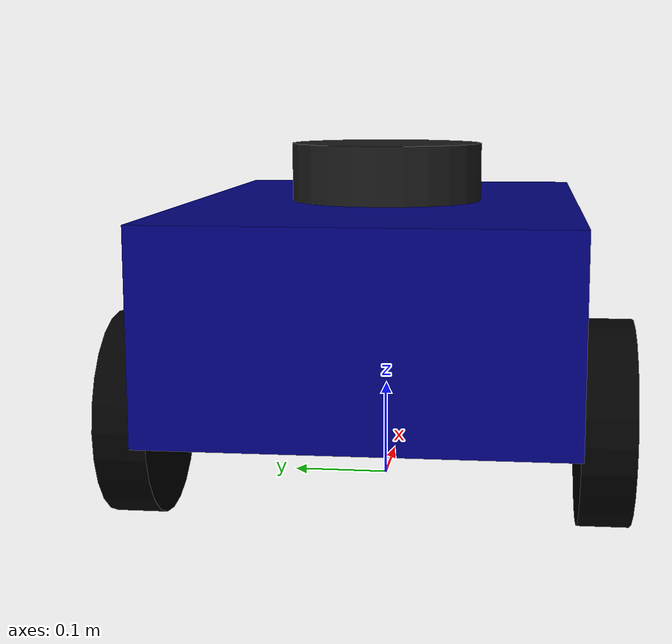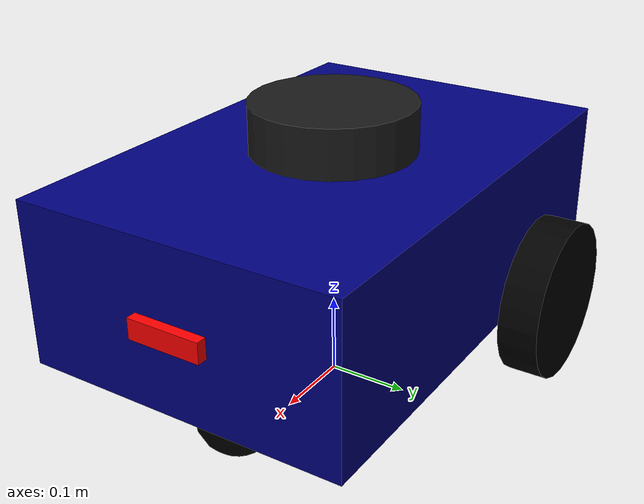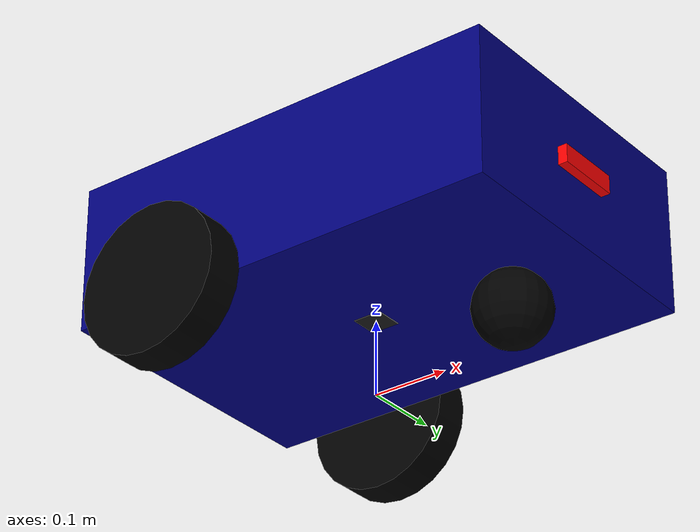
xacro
<?xml version="1.0"?>
<robot name="my_diff_robot" xmlns:xacro="http://www.ros.org/wiki/xacro">

    <xacro:include filename="$(find diff_robot_description)/urdf/robot/common_properties.xacro" />
    <xacro:include filename="$(find diff_robot_description)/urdf/robot/mobile_base.xacro" />
    <xacro:include filename="$(find diff_robot_description)/urdf/gazebo/gazebo.xacro" />
    <xacro:include filename="$(find diff_robot_description)/urdf/control/ros2_controllers.xacro" />

</robot>

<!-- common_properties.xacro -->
<robot xmlns:xacro="http://www.ros.org/wiki/xacro">

    <material name="blue">
        <color rgba="0 0 0.5 1" />
    </material>

    <material name="grey">
        <color rgba="0.5 0.5 0.5 1" />
    </material>

    <material name="black">
        <color rgba="0 0 0 1" />
    </material>

</robot>

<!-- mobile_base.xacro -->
<robot xmlns:xacro="http://www.ros.org/wiki/xacro">
  <xacro:include filename="$(find diff_robot_description)/urdf/inertia.xacro" />

    <xacro:property name="base_length" value="0.6" />
    <xacro:property name="base_width" value="0.4" />
    <xacro:property name="base_height" value="0.2" />
    <xacro:property name="wheel_radius" value="0.1" />
    <xacro:property name="wheel_length" value="0.05" />
    <xacro:arg name="enable_collision" default="false" />

    <xacro:macro name="default_inertia" params="mass">
        <inertial>
            <mass value="${mass}"/>
            <origin xyz="0.0 0.0 0.0" rpy="0.0 0.0 0.0"/>
            <inertia ixx="1" ixy="0.0" ixz="0.0" iyy="1" iyz="0.0" izz="1"/>
        </inertial>
    </xacro:macro>

    <!-- base_footprint (projection of base_link on the ground) -->
    <link name="base_footprint" />

    <joint name="base_joint" type="fixed">
        <parent link="base_footprint" />
        <child link="base_link" />
        <origin xyz="0 0 ${wheel_radius}" rpy="0 0 0"/>
    </joint>

    <!-- base_link and base_scan (required for Nav2) -->
    <link name="base_link">
        <visual>
            <geometry>
                <box size="${base_length} ${base_width} ${base_height}" />
            </geometry>
            <origin xyz="0 0 ${base_height / 2.0}" rpy="0 0 0" />
            <material name="blue" />
        </visual>

    <xacro:if value="$(arg enable_collision)">
        <collision>
          <geometry>
            <box size="${base_length} ${base_width} ${base_height}" />
          </geometry>
          <origin xyz="0 0 ${base_height / 2.0}" rpy="0 0 0" />
        </collision>
      </xacro:if>

      <xacro:inertial_box mass="5"  x="${base_length}" y="${base_width}" z="${base_height}">
        <origin xyz="0 0 ${base_height / 2.0}" rpy="0 0 0"/>
      </xacro:inertial_box>
    </link>

    <!-- 2 Differential wheels and one caster wheel to keep balance-->
    <xacro:macro name="wheel_link" params="prefix">
        <link name="${prefix}_wheel_link">
            <visual>
                <geometry>
                    <cylinder radius="${wheel_radius}" length="${wheel_length}"/>
                </geometry>
                <origin xyz="0 0 0" rpy="${pi / 2.0} 0 0" />
                <material name="black" />
            </visual>

            <xacro:if value="$(arg enable_collision)">
                <collision>
                  <geometry>
                    <cylinder radius="${wheel_radius}" length="${wheel_length}" />
                  </geometry>
                  <origin xyz="0 0 0" rpy="${pi / 2.0} 0 0" />
                </collision>
              </xacro:if>

              <xacro:inertial_cylinder mass="1" length="${wheel_length}" radius="${wheel_radius}">
                <origin xyz="0 0 0" rpy="${pi / 2.0} 0 0" />
              </xacro:inertial_cylinder>
          </link>
    </xacro:macro>

    <xacro:wheel_link prefix="right" />
    <xacro:wheel_link prefix="left" />

    <link name="caster_wheel_link">
        <visual>
            <geometry>
                <sphere radius="${wheel_radius / 2.0}" />
            </geometry>
            <origin xyz="0 0 0" rpy="0 0 0" />
            <material name="black" />
        </visual>

        <xacro:if value="$(arg enable_collision)">
            <collision>
              <geometry>
                <sphere radius="${wheel_radius / 2.0}" />
              </geometry>
              <origin xyz="0 0 0" rpy="0 0 0" />
            </collision>
        </xacro:if>

        <xacro:inertial_sphere mass="0.5" radius="${wheel_radius / 2.0}">
          <origin xyz="0 0 0" rpy="0 0 0" />
        </xacro:inertial_sphere>
    </link>

    <joint name="base_right_wheel_joint" type="continuous">
        <parent link="base_link" />
        <child link="right_wheel_link" />
        <origin xyz="${-base_length / 4.0} ${-(base_width + wheel_length) / 2.0} 0" rpy="0 0 0" />
        <axis xyz="0 1 0" />
        <dynamics damping="0.1" friction="0.0"/>
    </joint>

    <joint name="base_left_wheel_joint" type="continuous">
        <parent link="base_link" />
        <child link="left_wheel_link" />
        <origin xyz="${-base_length / 4.0} ${(base_width + wheel_length) / 2.0} 0" rpy="0 0 0" />
        <axis xyz="0 1 0" />
        <dynamics damping="0.1" friction="0.0"/>
    </joint>

    <joint name="base_caster_wheel_joint" type="fixed">
        <parent link="base_link" />
        <child link="caster_wheel_link" />
        <origin xyz="${base_length / 3.0} 0 ${-wheel_radius / 2.0}" rpy="0 0 0" />
        <axis xyz="0 0 1" />
    </joint>

</robot>

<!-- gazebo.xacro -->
<robot name="my_diff_robot" xmlns:xacro="http://www.ros.org/wiki/xacro">
    <xacro:arg name="prefix" default=""/>
    <xacro:property name="M_PI" value="3.1415926535897931" />
    <xacro:arg name="enable_collision" default="false"/>
    <xacro:arg name="enable_gz_control" default="false"/>

    <xacro:include filename="$(find diff_robot_description)/urdf/sensors/imu.urdf.xacro" />
    <xacro:include filename="$(find diff_robot_description)/urdf/sensors/lidar.urdf.xacro" />
    <xacro:include filename="$(find diff_robot_description)/urdf/sensors/rgbd_camera.urdf.xacro" />

    <!-- Wheel properties-->
    <gazebo reference="left_wheel_link">
      <mu1>1</mu1>
      <mu2>1</mu2>
    </gazebo>

    <gazebo reference="right_wheel_link">
      <mu1>1</mu1>
      <mu2>1</mu2>
    </gazebo>

    <gazebo reference="caster_wheel_link">
      <mu1>0.01</mu1>
      <mu2>0.01</mu2>
    </gazebo>

    <!-- Plugin Ros2 control Section for Gazebo-->
    <xacro:if value="$(arg enable_gz_control)">
      <gazebo>
        <plugin filename="gz_ros2_control-system" name="gz_ros2_control::GazeboSimROS2ControlPlugin">
            <parameters>$(find diff_robot_controllers)/config/robot_controllers.yaml</parameters>
        </plugin>
      </gazebo>
    </xacro:if>

    <!-- Sensors section -->
    <xacro:rgbd_camera
      prefix="$(arg prefix)"
      camera_name="cam_1"
      xyz_offset="0.3 0 0.1"
      rpy_offset="0 0 0"
      enable_collision="$(arg enable_collision)"/>

    <xacro:imu_sensor
      prefix="$(arg prefix)"
      parent="base_link"
      frame_id="imu"
      xyz_offset="0 0 0.006"
      rpy_offset="0 0 0"
      update_rate="15.0"
      topic_name="imu/data"
      enable_collision="$(arg enable_collision)"/>

    <xacro:lidar_sensor
      prefix="$(arg prefix)"
      parent="base_link"
      frame_id="base_scan"
      xyz_offset="0 0 0.23"
      rpy_offset="0 0 0"
      enable_collision="$(arg enable_collision)"
      topic_name="scan"/>

</robot>

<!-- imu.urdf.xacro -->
<robot xmlns:xacro="http://www.ros.org/wiki/xacro">
    <xacro:property name="M_PI" value="3.1415926535897931" />

    <xacro:macro name="imu_sensor" params="
        prefix:=''
        parent:='base_link'
        frame_id:='imu'
        xyz_offset:='0 0 0'
        rpy_offset:='0 0 0'
        inertial_xyz_offset:='0 0 0'
        inertial_rpy_offset:='0 0 0'
        mass:=0.031
        length:=0.03899
        width:=0.03785
        height:=0.01338
        material_name:='imu_black'
        material_color:='0.1 0.1 0.1 1'
        gazebo_material_ambient:='0.1 0.1 0.1 1'
        gazebo_material_diffuse:='0.1 0.1 0.1 1'
        gazebo_material_specular:='0.1 0.1 0.1 1'
        update_rate:='15.0'
        topic_name:='imu/data'
        always_on:=true
        visualize:=false
        enable_collision:=false">

        <xacro:property name="ixx" value="${(mass/12.0) * (height*height + width*width)}" />
        <xacro:property name="iyy" value="${(mass/12.0) * (length*length + height*height)}" />
        <xacro:property name="izz" value="${(mass/12.0) * (length*length + width*width)}" />

        <link name="${prefix}${frame_id}_link">
            <visual>
                <origin xyz="0 0 0" rpy="0 0 0"/>
                <geometry>
                    <box size="${length} ${width} ${height}"/>
                </geometry>
                <material name="${material_name}">
                    <color rgba="${material_color}"/>
                </material>
            </visual>

            <inertial>
                <mass value="${mass}" />
                <origin xyz="${inertial_xyz_offset}" rpy="${inertial_rpy_offset}"/>
                <inertia
                    ixx="${ixx}"
                    ixy="0.0"
                    ixz="0.0"
                    iyy="${iyy}"
                    iyz="0.0"
                    izz="${izz}" />
            </inertial>

            <xacro:if value="${enable_collision}">
                <collision>
                <geometry>
                    <box size="${length} ${width} ${height}"/>
                </geometry>
                <origin xyz="${inertial_xyz_offset}" rpy="${inertial_rpy_offset}"/>s
                </collision>
            </xacro:if>
        </link>

        <joint name="${prefix}${frame_id}_joint" type="fixed">
            <parent link="${prefix}${parent}"/>
            <child link="${prefix}${frame_id}_link" />
            <origin xyz="${xyz_offset}" rpy="${rpy_offset}"/>
        </joint>

        <!-- IMU Sensor -->
        <gazebo>
            <plugin filename="gz-sim-imu-system"
                    name="gz::sim::systems::Imu">
            </plugin>
        </gazebo>

        <gazebo reference="${prefix}${frame_id}_link">
            <material>
                <ambient>${gazebo_material_ambient}</ambient>
                <diffuse>${gazebo_material_diffuse}</diffuse>
                <specular>${gazebo_material_specular}</specular>
            </material>
            <sensor name="${prefix}imu_sensor" type="imu">
                <topic>${topic_name}</topic>
                <update_rate>${update_rate}</update_rate>
                <always_on>${always_on}</always_on>
                <visualize>${visualize}</visualize>
                <gz_frame_id>${prefix}${frame_id}_link</gz_frame_id>
                <imu>
                    <angular_velocity>true</angular_velocity>
                    <linear_acceleration>true</linear_acceleration>
                  </imu>
            </sensor>
        </gazebo>
    </xacro:macro>
</robot>

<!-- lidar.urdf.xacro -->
<robot xmlns:xacro="http://www.ros.org/wiki/xacro">
  <xacro:property name="M_PI" value="3.1415926535897931" />

  <xacro:macro name="lidar_sensor" params="
    prefix:=''
    parent:='base_link'
    frame_id:='base_scan'
    mesh_file:=''
    xyz_offset:='0 0 0.0825'
    rpy_offset:='0 0 0'
    mesh_xyz_offset:='0 0 0'
    mesh_rpy_offset:='${-M_PI/2} 0 0'
    mesh_scale:='0.001 0.001 0.001'
    collision_xyz_offset:='0 0 0'
    collision_rpy_offset:='0 0 0'
    inertial_xyz_offset:='0 0 0'
    inertial_rpy_offset:='0 0 0'
    lidar_width:=0.2
    lidar_height:=0.06
    mass:=0.185
    material_name:='rplidar_black'
    material_color:='0.1 0.1 0.1 1'
    gazebo_material_ambient:='0.1 0.1 0.1 1'
    gazebo_material_diffuse:='0.1 0.1 0.1 1'
    gazebo_material_specular:='0.1 0.1 0.1 1'
    update_rate:=10
    ray_count:=720
    min_angle:='-3.14159'
    max_angle:='3.14159'
    min_range:='0.20'
    max_range:='30.0'
    range_resolution:='0.013'
    topic_name:='scan'
    always_on:=true
    visualize:=true
    enable_collision:=false">

    <xacro:property name="radius" value="${lidar_width/2}" />
    <xacro:property name="ixx_iyy" value="1" />
    <xacro:property name="izz" value="1" />

    <link name="${prefix}${frame_id}">
      <visual>
        <geometry>
          <cylinder radius="${lidar_width/2}" length="${lidar_height}"/>
        </geometry>
        <material name="${material_name}">
          <color rgba="${material_color}"/>
        </material>
      </visual>

      <xacro:if value="${enable_collision}">
        <collision>
          <geometry>
            <cylinder radius="${lidar_width/2}" length="${lidar_height}"/>
          </geometry>
        </collision>
      </xacro:if>

      <inertial>
        <mass value="${mass}" />
        <origin xyz="${inertial_xyz_offset}" rpy="${inertial_rpy_offset}"/>
        <inertia
          ixx="${ixx_iyy}"
          ixy="0.0"
          ixz="0.0"
          iyy="${ixx_iyy}"
          iyz="0.0"
          izz="${izz}" />
      </inertial>
    </link>

    <joint name="${prefix}${frame_id}_joint" type="fixed">
      <parent link="${prefix}${parent}"/>
      <child link="${prefix}${frame_id}" />
      <origin xyz="${xyz_offset}" rpy="${rpy_offset}"/>
    </joint>

     <!-- Plugin Lidar Sensors Section for Gazebo-->
     <gazebo>
      <plugin
       filename="gz-sim-sensors-system"
       name="gz::sim::systems::Sensors">
       <render_engine>ogre2</render_engine>
      </plugin>
    </gazebo>

    <!-- Lidar sensor -->
    <gazebo reference="${prefix}${frame_id}">
      <material>
        <ambient>${gazebo_material_ambient}</ambient>
        <diffuse>${gazebo_material_diffuse}</diffuse>
        <specular>${gazebo_material_specular}</specular>
      </material>
      <sensor name="${prefix}lidar_sensor" type="gpu_lidar">
        <topic>${topic_name}</topic>
        <update_rate>${update_rate}</update_rate>
        <always_on>${always_on}</always_on>
        <visualize>${visualize}</visualize>
        <ray>
          <scan>
            <horizontal>
              <samples>${ray_count}</samples>
              <resolution>1</resolution>
              <min_angle>${min_angle}</min_angle>
              <max_angle>${max_angle}</max_angle>
            </horizontal>
            <vertical>
              <samples>1</samples>
              <resolution>1</resolution>
              <min_angle>0</min_angle>
              <max_angle>0</max_angle>
            </vertical>
          </scan>
          <range>
            <min>${min_range}</min>
            <max>${max_range}</max>
            <resolution>${range_resolution}</resolution>
          </range>
        </ray>
        <gz_frame_id>${prefix}${frame_id}</gz_frame_id>
      </sensor>
    </gazebo>
  </xacro:macro>
</robot>

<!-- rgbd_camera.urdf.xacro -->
<robot xmlns:xacro="http://www.ros.org/wiki/xacro">

  <xacro:property name="M_PI" value="3.1415926535897931" />

  <xacro:macro name="rgbd_camera" params="
    prefix:=''
    camera_name:='cam_1'
    parent:='base_link'
    xyz_offset:='0.105 0 0.05'
    rpy_offset:='0 -0.50 0'
    mesh_xyz_offset:='0 0 0'
    mesh_rpy_offset:='${M_PI/2} 0.0 ${M_PI/2}'
    collision_xyz_offset:='0 0 0'
    collision_rpy_offset:='0 0 0'
    inertial_xyz_offset:='0 0 0'
    inertial_rpy_offset:='0 0 0'
    optical_xyz_offset:='0 0 0'
    optical_rpy_offset:='${-M_PI/2} 0 ${-M_PI/2}'
    depth_frame_xyz_offset:='0 0 0'
    depth_frame_rpy_offset:='0 0 0'
    infra1_xyz_offset:='0 0 0'
    infra1_rpy_offset:='0 0 0'
    infra2_xyz_offset:='0 -0.05 0'
    infra2_rpy_offset:='0 0 0'
    color_xyz_offset:='0 0.015 0'
    color_rpy_offset:='0 0 0'
    cam_width:=0.090
    cam_height:=0.025
    cam_depth:=0.02505
    mass:=0.072
    ixx:=0.003881243
    ixy:=0.0
    ixz:=0.0
    iyy:=0.000498940
    iyz:=0.0
    izz:=0.003879257
    material_name:='aluminum'
    material_color:='1 0 0 1'
    horizontal_fov:=1.5184
    image_width:=424
    image_height:=240
    clip_near:=0.05
    clip_far:=1.5
    update_rate:=2
    always_on:=1
    visualize:=true
    enable_collision:=false">

    <link name="${prefix}${camera_name}_link">
      <visual>
        <origin xyz="0 0 0" rpy="0 0 0"/>
        <geometry>
          <box size="${cam_depth} ${cam_width} ${cam_height}"/>
        </geometry>
        <material name="${material_name}">
          <color rgba="${material_color}"/>
        </material>
      </visual>
      <xacro:if value="${enable_collision}">
        <collision>
          <origin xyz="0 0 0" rpy="0 0 0"/>
          <geometry>
            <box size="${cam_depth} ${cam_width} ${cam_height}"/>
          </geometry>
        </collision>
      </xacro:if>
      <inertial>
        <mass value="${mass}" />
        <origin xyz="${inertial_xyz_offset}" rpy="${inertial_rpy_offset}"/>
        <inertia ixx="${ixx}" ixy="${ixy}" ixz="${ixz}"
                 iyy="${iyy}" iyz="${iyz}" izz="${izz}" />
      </inertial>
    </link>

    <joint name="${prefix}${camera_name}_joint" type="fixed">
      <parent link="${prefix}${parent}"/>
      <child link="${prefix}${camera_name}_link" />
      <origin xyz="${xyz_offset}" rpy="${rpy_offset}"/>
    </joint>

    <joint name="${prefix}${camera_name}_depth_joint" type="fixed">
      <origin xyz="${depth_frame_xyz_offset}" rpy="${depth_frame_rpy_offset}"/>
      <parent link="${prefix}${camera_name}_link"/>
      <child link="${prefix}${camera_name}_depth_frame" />
    </joint>
    <link name="${prefix}${camera_name}_depth_frame"/>

    <joint name="${prefix}${camera_name}_depth_optical_joint" type="fixed">
      <origin xyz="${optical_xyz_offset}" rpy="${optical_rpy_offset}" />
      <parent link="${prefix}${camera_name}_depth_frame" />
      <child link="${prefix}${camera_name}_depth_optical_frame" />
    </joint>
    <link name="${prefix}${camera_name}_depth_optical_frame"/>

    <joint name="${prefix}${camera_name}_infra1_joint" type="fixed">
      <origin xyz="${infra1_xyz_offset}" rpy="${infra1_rpy_offset}" />
      <parent link="${prefix}${camera_name}_link" />
      <child link="${prefix}${camera_name}_infra1_frame" />
    </joint>
    <link name="${prefix}${camera_name}_infra1_frame"/>

    <joint name="${prefix}${camera_name}_infra1_optical_joint" type="fixed">
      <origin xyz="${optical_xyz_offset}" rpy="${optical_rpy_offset}" />
      <parent link="${prefix}${camera_name}_infra1_frame" />
      <child link="${prefix}${camera_name}_infra1_optical_frame" />
    </joint>
    <link name="${prefix}${camera_name}_infra1_optical_frame"/>

    <joint name="${prefix}${camera_name}_infra2_joint" type="fixed">
      <origin xyz="${infra2_xyz_offset}" rpy="${infra2_rpy_offset}" />
      <parent link="${prefix}${camera_name}_link" />
      <child link="${prefix}${camera_name}_infra2_frame" />
    </joint>
    <link name="${prefix}${camera_name}_infra2_frame"/>

    <joint name="${prefix}${camera_name}_infra2_optical_joint" type="fixed">
      <origin xyz="${optical_xyz_offset}" rpy="${optical_rpy_offset}" />
      <parent link="${prefix}${camera_name}_infra2_frame" />
      <child link="${prefix}${camera_name}_infra2_optical_frame" />
    </joint>
    <link name="${prefix}${camera_name}_infra2_optical_frame"/>

    <joint name="${prefix}${camera_name}_color_joint" type="fixed">
      <origin xyz="${color_xyz_offset}" rpy="${color_rpy_offset}" />
      <parent link="${prefix}${camera_name}_link" />
      <child link="${prefix}${camera_name}_color_frame" />
    </joint>
    <link name="${prefix}${camera_name}_color_frame"/>

    <joint name="${prefix}${camera_name}_color_optical_joint" type="fixed">
      <origin xyz="${optical_xyz_offset}" rpy="${optical_rpy_offset}" />
      <parent link="${prefix}${camera_name}_color_frame" />
      <child link="${prefix}${camera_name}_color_optical_frame" />
    </joint>
    <link name="${prefix}${camera_name}_color_optical_frame"/>

    <gazebo reference="${prefix}${camera_name}_link">
      <sensor name="${prefix}${camera_name}" type="rgbd_camera">
        <camera>
          <horizontal_fov>${horizontal_fov}</horizontal_fov>
          <image>
            <width>${image_width}</width>
            <height>${image_height}</height>
          </image>
          <clip>
            <near>${clip_near}</near>
            <far>${clip_far}</far>
          </clip>
        </camera>
        <always_on>${always_on}</always_on>
        <gz_frame_id>${prefix}${camera_name}_depth_optical_frame</gz_frame_id>
        <topic>${camera_name}</topic>
        <update_rate>${update_rate}</update_rate>
        <visualize>${visualize}</visualize>
      </sensor>
    </gazebo>

  </xacro:macro>
</robot>
